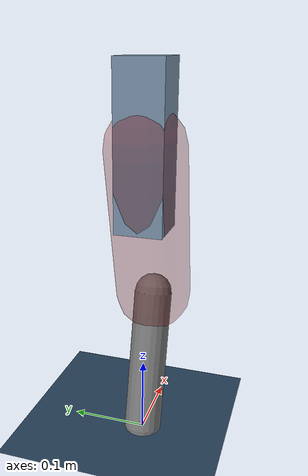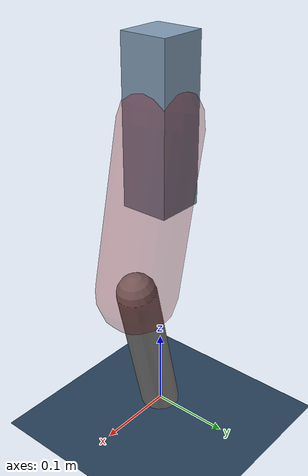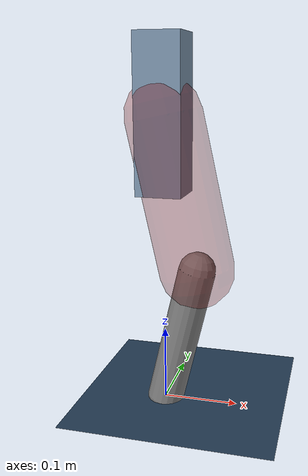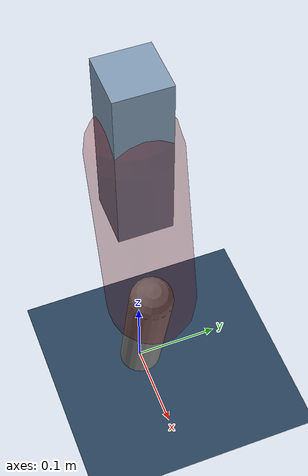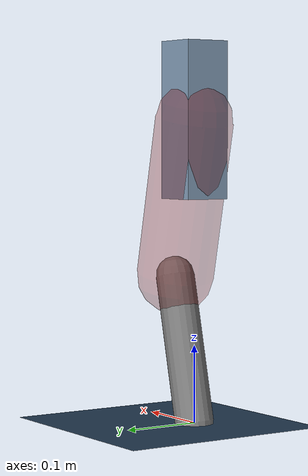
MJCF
<mujoco model="Hopper2D">
	<compiler inertiafromgeom="true" angle="radian" />
	<option timestep="0.001" integrator="implicit" cone="elliptic" solver="Newton" tolerance="1e-10" />

	<default>
		<geom contype="1" conaffinity="1" condim="3" friction="2 0.005 0.0001" solref="0.005 1" />
		<joint limited="true" damping="0.1" />
	</default>

	<asset>
		<texture name="skybox" type="skybox" builtin="gradient" rgb1=".4 .6 .8" rgb2="0 0 0" width="800" height="800" />
		<texture name="grid" type="2d" builtin="checker" rgb1=".1 .2 .3" rgb2=".2 .3 .4" width="300" height="300" mark="edge" markrgb=".2 .3 .4" />
		<material name="ground" texture="grid" texrepeat="1 1" texuniform="true" reflectance="0.1" />
		<material name="leg" rgba="0.5 0.6 0.7 1" />
	</asset>

	<worldbody>

		<geom name="floor" type="plane" size="5 5 0.25" material="ground" />

		<light directional="false" diffuse="0.8 0.8 0.8" specular="0.3 0.3 0.3" pos="0 0 2" dir="0 0 -1" />
		<light mode="targetbodycom" target="base" directional="false" diffuse="0.8 0.8 0.8" specular="0.3 0.3 0.3" pos="0 0 2" dir="0 0 -1" />

		<camera name="fixed" pos="0 -2 1" xyaxes="1 0 0 0 0 1" />
		<camera name="tracking" mode="trackcom" pos="0 -3 1" />

		<body name="root" pos="0 0 0.38824840106803926">
			<joint name="slide_x" type="slide" axis="1 0 0" range="-100 100" />
			<joint name="slide_z" type="slide" axis="0 0 1" range="0 10" />

			<body name="base" pos="0 0 0">
				<geom name="torso" type="box" size="0.03 0.03 0.1" mass="2.449" material="leg" />

				<body name="link1" pos="0 0 0" euler="0 1.353591949418264 0">
					<joint type="hinge" axis="0 -1 0" pos="0 0 0" name="hinge1" limited="true" range="-3.14 3.14" stiffness="0" damping="0.1" />
					<geom name="thigh" type="capsule" fromto="0 0 0 0.20564812117138706 0 0" size="0.05" rgba="0.5 0 0 0.3" mass="0.7437203029284677" />

					<body name="link2" pos="0.20564812117138706 0 0" euler="0 0.4493845777386945 0">
						<joint type="hinge" axis="0 -1 0" pos="0 0 0" name="hinge2" limited="true" range="-3.14 3.14" stiffness="0" damping="0.1" />
						<geom name="shank" type="capsule" fromto="0 0 0 0.19260027989665218 0 0" size="0.025" mass="0.394640251906987" />

					</body>
				</body>
			</body>
		</body>
	</worldbody>

	<actuator>
		<motor name="torque1" joint="hinge1" ctrlrange="-90.769058263512 90.769058263512" ctrllimited="true" gear="1" />
		<motor name="torque2" joint="hinge2" ctrlrange="-26.43856906182874 26.43856906182874" ctrllimited="true" gear="1" />
	</actuator>
</mujoco>
